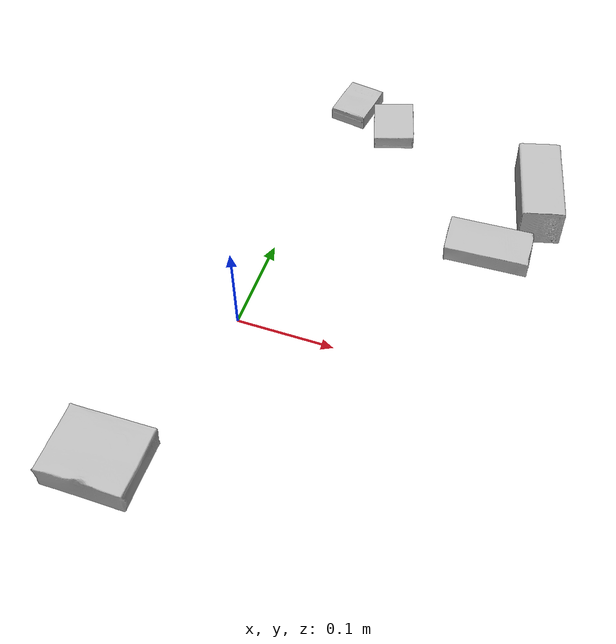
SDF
<sdf version="1.4">
  <world name="default">
    <light name="light1" type="point">
      <pose>0 0 1 0 0 0</pose>
      <diffuse>3 3 3 1</diffuse>
      <specular>3 3 3 1</specular>
    </light>
    <light name="light2" type="point">
      <pose>0 0.5 2 0 0 0</pose>
      <diffuse>1 1 1 1</diffuse>
      <specular>1 1 1 1</specular>
    </light>
    <light name="light3" type="point">
      <pose>0 0.5 2 0 0 0</pose>
      <diffuse>3 3 3 1</diffuse>
      <specular>3 3 3 1</specular>
    </light>
    <scene>
      <ambient>0.7 0.7 0.7</ambient>
    </scene>
    <model name="box1">
      <link name="link_box1">
        <collision name="default">
          <geometry>
            <mesh>
              <uri>model://gelatin_box/collision_meshes/collision.obj</uri>
              <scale>1.0 1.0 1.0</scale>
            </mesh>
          </geometry>
          <surface>
            <friction>
              <ode>
                <mu>0.5</mu>
                <mu2>0.5</mu2>
              </ode>
            </friction>
          <contact>
        <ode>
            <max_vel>0</max_vel>
            <min_depth>0.0001</min_depth>
            <kp>1e8</kp>
        </ode>
    </contact></surface>
        </collision>
        <visual name="default">
          <geometry>
            <mesh>
              <uri>model://gelatin_box/visual_meshes/visual.dae</uri>
              <scale>1.0 1.0 1.0</scale>
            </mesh>
          </geometry>
        </visual>
        <inertial>
          <mass>0.2001359760761261</mass>
          <pose>0.0004319618456065655 0.00011156872642459348 -0.00036403213744051754 -0.0010503718728910522 -0.00475581915504666 0.01644056319729456</pose>
          <inertia>
            <ixx>0.00014127967</ixx>
            <iyy>0.00010091532</iyy>
            <izz>0.00021505913</izz>
            <ixy>0</ixy>
            <ixz>0</ixz>
            <iyz>0</iyz>
          </inertia>
        </inertial>
      </link>
      <pose>-0.05530167743563652 -0.18774572014808655 0.01516831573098898 0.0055966430770588976 -0.007303664863959329 -1.570773644791326</pose>
    </model>
    <model name="box2">
      <link name="link_box2">
        <collision name="default">
          <geometry>
            <mesh>
              <uri>model://cracker_box/collision_meshes/collision.obj</uri>
              <scale>0.25 0.25 0.25</scale>
            </mesh>
          </geometry>
          <surface>
            <friction>
              <ode>
                <mu>0.5</mu>
                <mu2>0.5</mu2>
              </ode>
            </friction>
          <contact>
        <ode>
            <max_vel>0</max_vel>
            <min_depth>0.0001</min_depth>
            <kp>1e8</kp>
        </ode>
    </contact></surface>
        </collision>
        <visual name="default">
          <geometry>
            <mesh>
              <uri>model://cracker_box/visual_meshes/visual.dae</uri>
              <scale>0.25 0.25 0.25</scale>
            </mesh>
          </geometry>
        </visual>
        <inertial>
          <mass>0.052757441997528076</mass>
          <pose>0.00023660421720705926 6.358561950037256e-05 -0.0004257383698131889 -0.0003162076882876523 -0.011106491463043667 0.002546795002652857</pose>
          <inertia>
            <ixx>8.38696e-06</ixx>
            <iyy>1.384852e-05</iyy>
            <izz>1.9763109e-05</izz>
            <ixy>0</ixy>
            <ixz>0</ixz>
            <iyz>0</iyz>
          </inertia>
        </inertial>
      </link>
      <pose>0.015471119433641434 0.3286988139152527 0.009120447561144829 -0.01178796562778992 -0.007367141658926627 -1.7091514861298505</pose>
    </model>
    <model name="box3">
      <link name="link_box3">
        <collision name="default">
          <geometry>
            <mesh>
              <uri>model://wood_block/collision_meshes/collision.obj</uri>
              <scale>0.5 0.5 0.5</scale>
            </mesh>
          </geometry>
          <surface>
            <friction>
              <ode>
                <mu>0.5</mu>
                <mu2>0.5</mu2>
              </ode>
            </friction>
          <contact>
        <ode>
            <max_vel>0</max_vel>
            <min_depth>0.0001</min_depth>
            <kp>1e8</kp>
        </ode>
    </contact></surface>
        </collision>
        <visual name="default">
          <geometry>
            <mesh>
              <uri>model://wood_block/visual_meshes/visual.dae</uri>
              <scale>0.5 0.5 0.5</scale>
            </mesh>
          </geometry>
        </visual>
        <inertial>
          <mass>0.15567830204963684</mass>
          <pose>-2.9066577553749084e-06 -0.000285404734313488 0.00013204292918089777 -0.052210429644919926 -0.005192696852900695 -0.006861378081336091</pose>
          <inertia>
            <ixx>5.2080282e-05</ixx>
            <iyy>0.00016452163</iyy>
            <izz>0.00016390622</izz>
            <ixy>0</ixy>
            <ixz>0</ixz>
            <iyz>0</iyz>
          </inertia>
        </inertial>
      </link>
      <pose>0.24569183588027954 0.24677760899066925 0.02262926660478115 -0.005208466279987218 0.005718761609121533 -1.3091836110864894</pose>
    </model>
    <model name="box4">
      <link name="link_box4">
        <collision name="default">
          <geometry>
            <mesh>
              <uri>model://pudding_box/collision_meshes/collision.obj</uri>
              <scale>0.5 0.5 0.5</scale>
            </mesh>
          </geometry>
          <surface>
            <friction>
              <ode>
                <mu>0.5</mu>
                <mu2>0.5</mu2>
              </ode>
            </friction>
          <contact>
        <ode>
            <max_vel>0</max_vel>
            <min_depth>0.0001</min_depth>
            <kp>1e8</kp>
        </ode>
    </contact></surface>
        </collision>
        <visual name="default">
          <geometry>
            <mesh>
              <uri>model://pudding_box/visual_meshes/visual.dae</uri>
              <scale>0.5 0.5 0.5</scale>
            </mesh>
          </geometry>
        </visual>
        <inertial>
          <mass>0.0498165600001812</mass>
          <pose>0.00024474109522998333 0.00040339428232982755 -0.0002594413817860186 0.00521310227074754 -0.006603796865596143 0.02007982702575369</pose>
          <inertia>
            <ixx>1.4078764e-05</ixx>
            <iyy>9.472293e-06</iyy>
            <izz>2.0790974e-05</izz>
            <ixy>0</ixy>
            <ixz>0</ixz>
            <iyz>0</iyz>
          </inertia>
        </inertial>
      </link>
      <pose>0.06564266234636307 0.3071928024291992 0.009862902574241161 0.022348496754745584 -0.011391737379657898 0.2982141768201788</pose>
    </model>
    <model name="box5">
      <link name="link_box5">
        <collision name="default">
          <geometry>
            <mesh>
              <uri>model://sugar_box/collision_meshes/collision.obj</uri>
              <scale>0.5 0.5 0.5</scale>
            </mesh>
          </geometry>
          <surface>
            <friction>
              <ode>
                <mu>0.5</mu>
                <mu2>0.5</mu2>
              </ode>
            </friction>
          <contact>
        <ode>
            <max_vel>0</max_vel>
            <min_depth>0.0001</min_depth>
            <kp>1e8</kp>
        </ode>
    </contact></surface>
        </collision>
        <visual name="default">
          <geometry>
            <mesh>
              <uri>model://sugar_box/visual_meshes/visual.dae</uri>
              <scale>0.5 0.5 0.5</scale>
            </mesh>
          </geometry>
        </visual>
        <inertial>
          <mass>0.08508674055337906</mass>
          <pose>0.0005171863595023751 1.924554817378521e-05 -0.00018182402709499002 -0.0004046257768003499 0.0010506634050152445 0.002615378556389427</pose>
          <inertia>
            <ixx>1.7723507e-05</ixx>
            <iyy>5.7286023e-05</iyy>
            <izz>6.85782e-05</izz>
            <ixy>0</ixy>
            <ixz>0</ixz>
            <iyz>0</iyz>
          </inertia>
        </inertial>
      </link>
      <pose>0.21182861924171448 0.1658230423927307 0.011399306356906891 0.0007745361234443429 -0.02343298848338651 -3.071509129914166</pose>
    </model>
  <physics type="ode">
      <max_contacts>50</max_contacts>
      <ode>
        <solver>
          <type>quick</type>
          <iters>75</iters>
        </solver>
        <constraints>
          <contact_max_correcting_vel>0</contact_max_correcting_vel>
          <contact_surface_layer>0</contact_surface_layer>
        </constraints>
      </ode>
    </physics></world>
</sdf>
